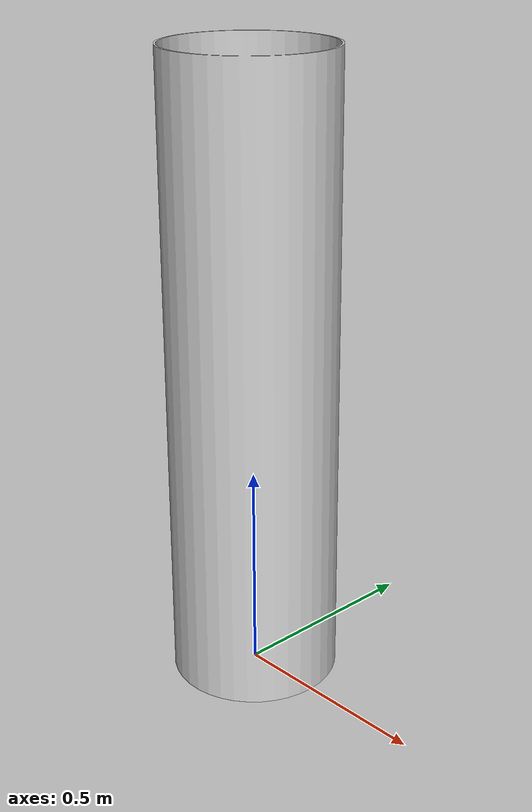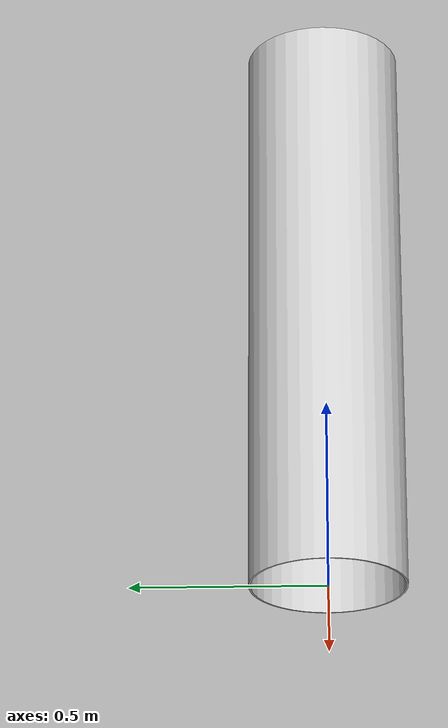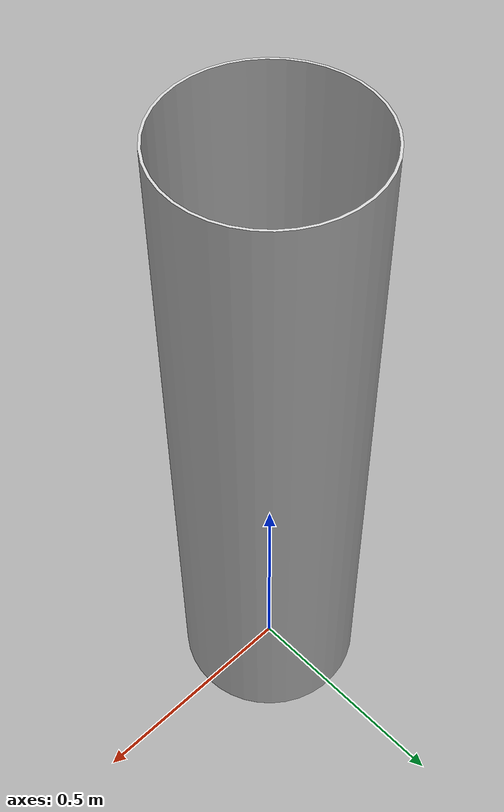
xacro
<?xml version="1.0"?>
<robot name="pipe">
    <!-- Link principal con el mesh -->
    <link name="pipe">
        <visual>
            <geometry>
                <mesh filename="package://peacetolero_description/meshes/pipe.dae" scale="1 1 1"/>
            </geometry>
        </visual>
    </link>
</robot>
